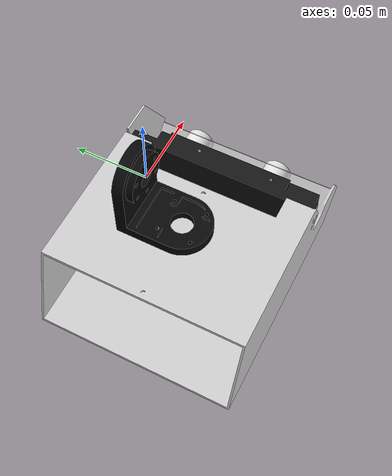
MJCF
<mujoco model="h_link2">
  <default>
    <default class="visual">
      <geom group="2" type="mesh" contype="0" conaffinity="0"/>
    </default>
    <default class="collision">
      <geom group="3" type="mesh"/>
    </default>
  </default>
  <asset>
    <material name="black_metal" specular="0.5" shininess="0.09604875199999999" rgba="0.030034 0.030034 0.030034 1.000000"/>
    <material name="grey_metal.002" specular="0.5" shininess="0.09604875199999999" rgba="0.081647 0.081647 0.081647 1.000000"/>
    <material name="lens" specular="0.5" shininess="0.069637344" rgba="1.000000 1.000000 1.000000 0.791667"/>
    <material name="white_metal.005" specular="0.5" shininess="0.25" rgba="0.800000 0.800000 0.800000 1.000000"/>
    <mesh file="h_link2_0.obj"/>
    <mesh file="h_link2_1.obj"/>
    <mesh file="h_link2_2.obj"/>
    <mesh file="h_link2_3.obj"/>
    <mesh file="h_link2_collision_0.obj"/>
    <mesh file="h_link2_collision_1.obj"/>
    <mesh file="h_link2_collision_2.obj"/>
    <mesh file="h_link2_collision_3.obj"/>
    <mesh file="h_link2_collision_4.obj"/>
    <mesh file="h_link2_collision_5.obj"/>
    <mesh file="h_link2_collision_6.obj"/>
    <mesh file="h_link2_collision_7.obj"/>
    <mesh file="h_link2_collision_8.obj"/>
    <mesh file="h_link2_collision_9.obj"/>
  </asset>
  <worldbody>
    <body name="h_link2">
      <geom mesh="h_link2_0" material="lens" class="visual"/>
      <geom mesh="h_link2_1" material="grey_metal.002" class="visual"/>
      <geom mesh="h_link2_2" material="black_metal" class="visual"/>
      <geom mesh="h_link2_3" material="white_metal.005" class="visual"/>
      <geom mesh="h_link2_collision_0" rgba="0.06482403838966655 0.6630620623552496 0.25328250798370067 1" class="collision"/>
      <geom mesh="h_link2_collision_1" rgba="0.4930669819788057 0.20526280929322638 0.7784387063359418 1" class="collision"/>
      <geom mesh="h_link2_collision_2" rgba="0.9423560176680936 0.573999831657446 0.5403903409757056 1" class="collision"/>
      <geom mesh="h_link2_collision_3" rgba="0.95379403234414 0.9922144193225363 0.5619624327876511 1" class="collision"/>
      <geom mesh="h_link2_collision_4" rgba="0.568554029600901 0.11580988212856091 0.9263288543599137 1" class="collision"/>
      <geom mesh="h_link2_collision_5" rgba="0.2346634310140847 0.9868245066954165 0.033788634102620785 1" class="collision"/>
      <geom mesh="h_link2_collision_6" rgba="0.9530878965003919 0.8789971400845585 0.6678510786865816 1" class="collision"/>
      <geom mesh="h_link2_collision_7" rgba="0.6026930988235881 0.8693198227751189 0.39692071747904645 1" class="collision"/>
      <geom mesh="h_link2_collision_8" rgba="0.7221265442808811 0.9788940163474793 0.20993731508279245 1" class="collision"/>
      <geom mesh="h_link2_collision_9" rgba="0.599117059546949 0.3994486128198068 0.157107569313633 1" class="collision"/>
    </body>
  </worldbody>
</mujoco>
